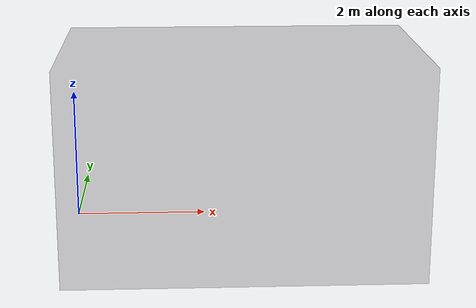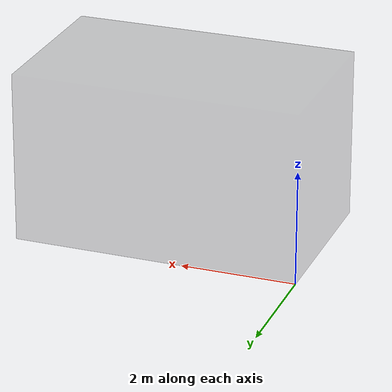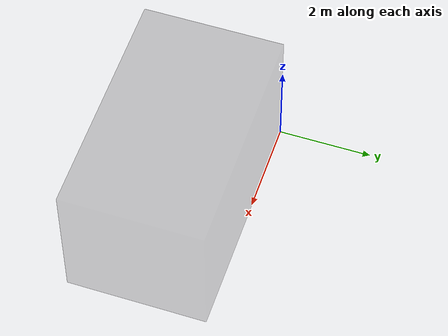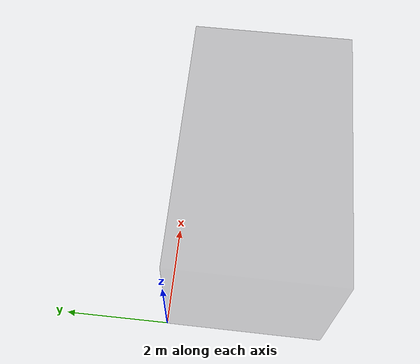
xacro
<?xml version="1.0"?>

<robot xmlns:xacro="http://www.ros.org/wiki/xacro" name="zero_g">
  <link name="world"/>

  <joint name="zero_g_joint" type="fixed">
    <origin xyz="2.5 -1.5 1.5" rpy="0 0 0"/>
    <parent link="world"/>
    <child link="zero_g"/>
  </joint>

  <!-- Base description -->
  <link name="zero_g">
    <visual>
      <geometry>
        <box size="5 3 3"/>
      </geometry>
      <material name="black_transparent">
        <color rgba="0 0 0 0.1"/>
      </material>
    </visual>
    <collision>
      <geometry>
        <box size="5 3 3"/>
      </geometry>
    </collision>
  </link>
</robot>
